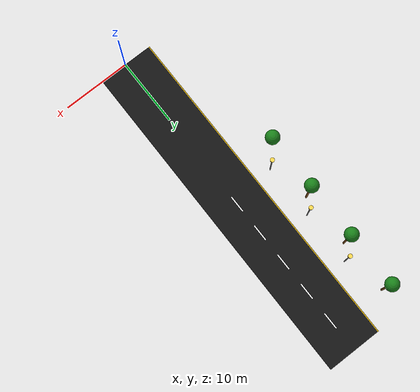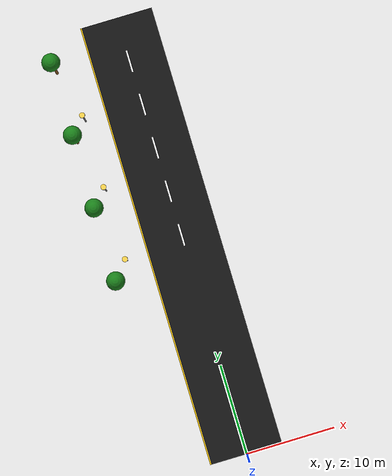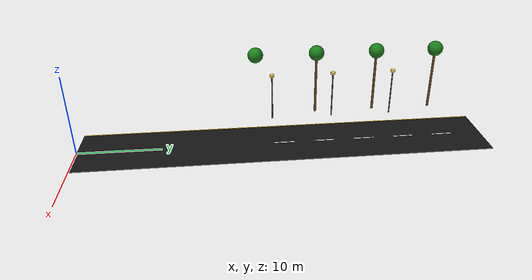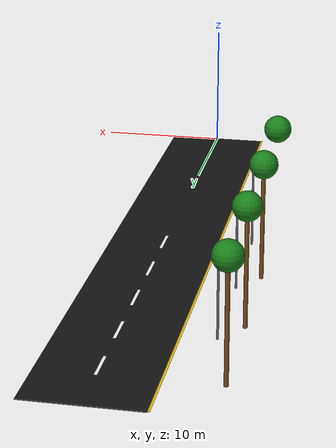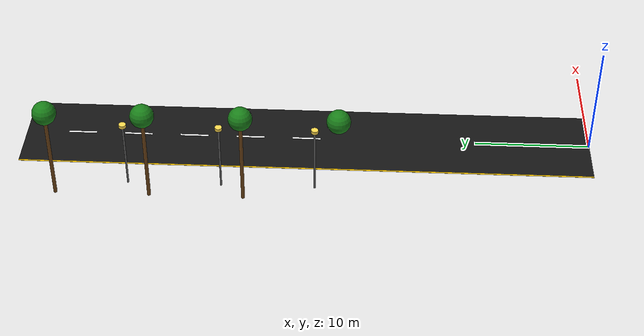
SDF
<sdf version="1.6">
 <world name="srm_campus">
  <model name="road_N">
   <static>true</static>
   <pose>0 25 0.03 0 0 0</pose>
   <link name="link">
    <collision name="col">
     <geometry><box><size>8.0 50.0 0.06</size></box></geometry>
     <surface><friction><ode><mu>1.0</mu><mu2>1.0</mu2></ode></friction></surface>
    </collision>
    <visual name="vis">
     <geometry><box><size>8.0 50.0 0.06</size></box></geometry>
     <material><ambient>0.06 0.06 0.06 1</ambient><diffuse>0.08 0.08 0.08 1</diffuse></material>
    </visual>
   </link>
  </model>
  <model name="el_NL">
   <static>true</static>
   <pose>-4.1 25 0.065 0 0 0</pose>
   <link name="l">
    <collision name="c"><geometry><box><size>0.15 50 0.01</size></box></geometry></collision>
    <visual name="v">
     <geometry><box><size>0.15 50 0.01</size></box></geometry>
     <material><ambient>0.95 0.75 0.0 1</ambient><diffuse>0.95 0.75 0.0 1</diffuse></material>
    </visual>
   </link>
  </model>
  <model name="wn05">
   <static>true</static>
   <pose>0 25 0.07 0 0 0</pose>
   <link name="l">
    <collision name="c"><geometry><box><size>0.20 2.5 0.01</size></box></geometry></collision>
    <visual name="v">
     <geometry><box><size>0.20 2.5 0.01</size></box></geometry>
     <material><ambient>1 1 1 1</ambient><diffuse>1 1 1 1</diffuse></material>
    </visual>
   </link>
  </model>
  <model name="wn06">
   <static>true</static>
   <pose>0 30 0.07 0 0 0</pose>
   <link name="l">
    <collision name="c"><geometry><box><size>0.20 2.5 0.01</size></box></geometry></collision>
    <visual name="v">
     <geometry><box><size>0.20 2.5 0.01</size></box></geometry>
     <material><ambient>1 1 1 1</ambient><diffuse>1 1 1 1</diffuse></material>
    </visual>
   </link>
  </model>
  <model name="wn07">
   <static>true</static>
   <pose>0 35 0.07 0 0 0</pose>
   <link name="l">
    <collision name="c"><geometry><box><size>0.20 2.5 0.01</size></box></geometry></collision>
    <visual name="v">
     <geometry><box><size>0.20 2.5 0.01</size></box></geometry>
     <material><ambient>1 1 1 1</ambient><diffuse>1 1 1 1</diffuse></material>
    </visual>
   </link>
  </model>
  <model name="wn08">
   <static>true</static>
   <pose>0 40 0.07 0 0 0</pose>
   <link name="l">
    <collision name="c"><geometry><box><size>0.20 2.5 0.01</size></box></geometry></collision>
    <visual name="v">
     <geometry><box><size>0.20 2.5 0.01</size></box></geometry>
     <material><ambient>1 1 1 1</ambient><diffuse>1 1 1 1</diffuse></material>
    </visual>
   </link>
  </model>
  <model name="wn09">
   <static>true</static>
   <pose>0 45 0.07 0 0 0</pose>
   <link name="l">
    <collision name="c"><geometry><box><size>0.20 2.5 0.01</size></box></geometry></collision>
    <visual name="v">
     <geometry><box><size>0.20 2.5 0.01</size></box></geometry>
     <material><ambient>1 1 1 1</ambient><diffuse>1 1 1 1</diffuse></material>
    </visual>
   </link>
  </model>
  <model name="sl_nl3">
   <static>true</static>
   <pose>-6.5 24 3 0 0 0</pose>
   <link name="l">
    <collision name="c">
     <geometry><cylinder><radius>0.08</radius><length>6</length></cylinder></geometry>
    </collision>
    <visual name="trunk">
     <geometry><cylinder><radius>0.08</radius><length>6</length></cylinder></geometry>
     <material><ambient>0.4 0.4 0.4 1</ambient><diffuse>0.4 0.4 0.4 1</diffuse></material>
    </visual>
   </link>
  </model>
  <model name="sl_nl3h">
   <static>true</static>
   <pose>-6.5 24 6.2 0 0 0</pose>
   <link name="l">
    <collision name="c">
     <geometry><cylinder><radius>0.3</radius><length>0.3</length></cylinder></geometry>
    </collision>
    <visual name="v">
     <geometry><cylinder><radius>0.3</radius><length>0.3</length></cylinder></geometry>
     <material><ambient>0.95 0.75 0.2 1</ambient><diffuse>1.0 0.85 0.3 1</diffuse></material>
    </visual>
   </link>
  </model>
  <model name="sl_nl4">
   <static>true</static>
   <pose>-6.5 32 3 0 0 0</pose>
   <link name="l">
    <collision name="c">
     <geometry><cylinder><radius>0.08</radius><length>6</length></cylinder></geometry>
    </collision>
    <visual name="trunk">
     <geometry><cylinder><radius>0.08</radius><length>6</length></cylinder></geometry>
     <material><ambient>0.4 0.4 0.4 1</ambient><diffuse>0.4 0.4 0.4 1</diffuse></material>
    </visual>
   </link>
  </model>
  <model name="sl_nl4h">
   <static>true</static>
   <pose>-6.5 32 6.2 0 0 0</pose>
   <link name="l">
    <collision name="c">
     <geometry><cylinder><radius>0.3</radius><length>0.3</length></cylinder></geometry>
    </collision>
    <visual name="v">
     <geometry><cylinder><radius>0.3</radius><length>0.3</length></cylinder></geometry>
     <material><ambient>0.95 0.75 0.2 1</ambient><diffuse>1.0 0.85 0.3 1</diffuse></material>
    </visual>
   </link>
  </model>
  <model name="sl_nl5">
   <static>true</static>
   <pose>-6.5 40 3 0 0 0</pose>
   <link name="l">
    <collision name="c">
     <geometry><cylinder><radius>0.08</radius><length>6</length></cylinder></geometry>
    </collision>
    <visual name="trunk">
     <geometry><cylinder><radius>0.08</radius><length>6</length></cylinder></geometry>
     <material><ambient>0.4 0.4 0.4 1</ambient><diffuse>0.4 0.4 0.4 1</diffuse></material>
    </visual>
   </link>
  </model>
  <model name="sl_nl5h">
   <static>true</static>
   <pose>-6.5 40 6.2 0 0 0</pose>
   <link name="l">
    <collision name="c">
     <geometry><cylinder><radius>0.3</radius><length>0.3</length></cylinder></geometry>
    </collision>
    <visual name="v">
     <geometry><cylinder><radius>0.3</radius><length>0.3</length></cylinder></geometry>
     <material><ambient>0.95 0.75 0.2 1</ambient><diffuse>1.0 0.85 0.3 1</diffuse></material>
    </visual>
   </link>
  </model>
  <model name="pt_nl3t">
   <static>true</static>
   <pose>-8 22 8.5 0 0 0</pose>
   <link name="l">
    <collision name="c"><geometry><sphere><radius>1.0</radius></sphere></geometry></collision>
    <visual name="v">
     <geometry><sphere><radius>1.0</radius></sphere></geometry>
     <material><ambient>0.08 0.45 0.08 1</ambient><diffuse>0.10 0.50 0.10 1</diffuse></material>
    </visual>
   </link>
  </model>
  <model name="pt_nl4">
   <static>true</static>
   <pose>-8 30 4 0 0 0</pose>
   <link name="l">
    <collision name="c">
     <geometry><cylinder><radius>0.15</radius><length>8</length></cylinder></geometry>
    </collision>
    <visual name="v">
     <geometry><cylinder><radius>0.15</radius><length>8</length></cylinder></geometry>
     <material><ambient>0.45 0.28 0.10 1</ambient><diffuse>0.45 0.28 0.10 1</diffuse></material>
    </visual>
   </link>
  </model>
  <model name="pt_nl4t">
   <static>true</static>
   <pose>-8 30 8.5 0 0 0</pose>
   <link name="l">
    <collision name="c"><geometry><sphere><radius>1.0</radius></sphere></geometry></collision>
    <visual name="v">
     <geometry><sphere><radius>1.0</radius></sphere></geometry>
     <material><ambient>0.08 0.45 0.08 1</ambient><diffuse>0.10 0.50 0.10 1</diffuse></material>
    </visual>
   </link>
  </model>
  <model name="pt_nl5">
   <static>true</static>
   <pose>-8 38 4 0 0 0</pose>
   <link name="l">
    <collision name="c">
     <geometry><cylinder><radius>0.15</radius><length>8</length></cylinder></geometry>
    </collision>
    <visual name="v">
     <geometry><cylinder><radius>0.15</radius><length>8</length></cylinder></geometry>
     <material><ambient>0.45 0.28 0.10 1</ambient><diffuse>0.45 0.28 0.10 1</diffuse></material>
    </visual>
   </link>
  </model>
  <model name="pt_nl5t">
   <static>true</static>
   <pose>-8 38 8.5 0 0 0</pose>
   <link name="l">
    <collision name="c"><geometry><sphere><radius>1.0</radius></sphere></geometry></collision>
    <visual name="v">
     <geometry><sphere><radius>1.0</radius></sphere></geometry>
     <material><ambient>0.08 0.45 0.08 1</ambient><diffuse>0.10 0.50 0.10 1</diffuse></material>
    </visual>
   </link>
  </model>
  <model name="pt_nl6">
   <static>true</static>
   <pose>-8 46 4 0 0 0</pose>
   <link name="l">
    <collision name="c">
     <geometry><cylinder><radius>0.15</radius><length>8</length></cylinder></geometry>
    </collision>
    <visual name="v">
     <geometry><cylinder><radius>0.15</radius><length>8</length></cylinder></geometry>
     <material><ambient>0.45 0.28 0.10 1</ambient><diffuse>0.45 0.28 0.10 1</diffuse></material>
    </visual>
   </link>
  </model>
  <model name="pt_nl6t">
   <static>true</static>
   <pose>-8 46 8.5 0 0 0</pose>
   <link name="l">
    <collision name="c"><geometry><sphere><radius>1.0</radius></sphere></geometry></collision>
    <visual name="v">
     <geometry><sphere><radius>1.0</radius></sphere></geometry>
     <material><ambient>0.08 0.45 0.08 1</ambient><diffuse>0.10 0.50 0.10 1</diffuse></material>
    </visual>
   </link>
  </model>
 </world>
</sdf>
